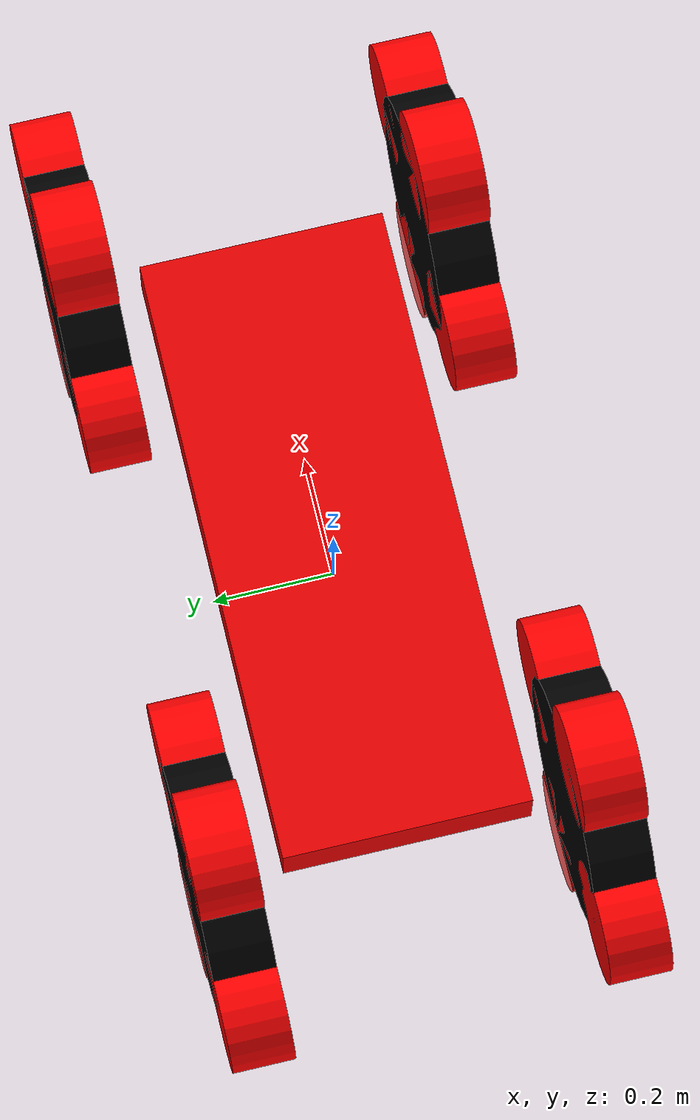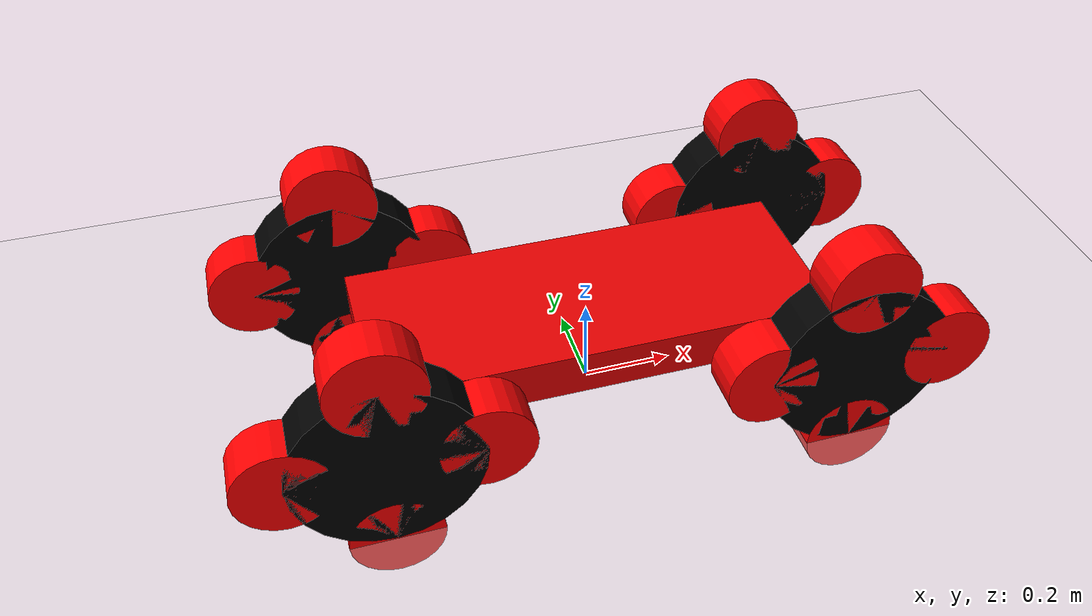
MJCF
<mujoco><option gravity="0 0 -9.81" /><worldbody><light diffuse=".5 .5 .5" pos="0 0 3" dir="0 0 -1" /><geom type="plane" size="5 5 0.1" rgba=".9 .9 .9 1" /><body name="chassis" pos="0 0 0.2" euler="0 90 0"><joint type="free" /><geom type="box" size=".05 .2 .5" rgba="0.9 0 0 1" /><body name="leftf-tire" pos="0 0.3 -0.5" euler="90 0 0"><joint name="leftf-wheel" type="hinge" axis="0 0 -1" /><geom type="cylinder" size=".2 0.05" rgba="0 0 0 1" /><body pos="0 0.2 0" euler="0 0 0"><geom type="cylinder" size=".1 0.05" rgba="1 0 0 1" /></body><body pos="0 -0.2 0" euler="0 0 0"><geom type="cylinder" size=".1 0.05" rgba="1 0 0 1" /></body><body pos="0.2 0 0" euler="0 0 0"><geom type="cylinder" size=".1 0.05" rgba="1 0 0 1" /></body><body pos="-0.2 0 0" euler="0 0 0"><geom type="cylinder" size=".1 0.05" rgba="1 0 0 1" /></body></body><body name="leftb-tire" pos="0 0.3 0.5" euler="90 0 0"><joint name="leftb-wheel" type="hinge" axis="0 0 -1" /><geom type="cylinder" size=".2 0.05" rgba="0 0 0 1" /><body pos="0 0.2 0" euler="0 0 0"><geom type="cylinder" size=".1 0.05" rgba="1 0 0 1" /></body><body pos="0 -0.2 0" euler="0 0 0"><geom type="cylinder" size=".1 0.05" rgba="1 0 0 1" /></body><body pos="0.2 0 0" euler="0 0 0"><geom type="cylinder" size=".1 0.05" rgba="1 0 0 1" /></body><body pos="-0.2 0 0" euler="0 0 0"><geom type="cylinder" size=".1 0.05" rgba="1 0 0 1" /></body></body><body name="rightf-tire" pos="0 -0.3 -0.5" euler="90 0 0"><joint name="rightf-wheel" type="hinge" axis="0 0 -1" /><geom type="cylinder" size=".2 0.05" rgba="0 0 0 1" /><body pos="0 0.2 0" euler="0 0 0"><geom type="cylinder" size=".1 0.05" rgba="1 0 0 1" /></body><body pos="0 -0.2 0" euler="0 0 0"><geom type="cylinder" size=".1 0.05" rgba="1 0 0 1" /></body><body pos="0.2 0 0" euler="0 0 0"><geom type="cylinder" size=".1 0.05" rgba="1 0 0 1" /></body><body pos="-0.2 0 0" euler="0 0 0"><geom type="cylinder" size=".1 0.05" rgba="1 0 0 1" /></body></body><body name="rightb-tire" pos="0 -0.3 0.5" euler="90 0 0"><joint name="rightb-wheel" type="hinge" axis="0 0 -1" /><geom type="cylinder" size=".2 0.05" rgba="0 0 0 1" /><body pos="0 0.2 0" euler="0 0 0"><geom type="cylinder" size=".1 0.05" rgba="1 0 0 1" /></body><body pos="0 -0.2 0" euler="0 0 0"><geom type="cylinder" size=".1 0.05" rgba="1 0 0 1" /></body><body pos="0.2 0 0" euler="0 0 0"><geom type="cylinder" size=".1 0.05" rgba="1 0 0 1" /></body><body pos="-0.2 0 0" euler="0 0 0"><geom type="cylinder" size=".1 0.05" rgba="1 0 0 1" /></body></body></body></worldbody><actuator><velocity name="leftf-velocity-servo" joint="leftf-wheel" kv="100" /><velocity name="leftb-velocity-servo" joint="leftb-wheel" kv="100" /><velocity name="rightf-velocity-servo" joint="rightf-wheel" kv="100" /><velocity name="rightb-velocity-servo" joint="rightb-wheel" kv="100" /></actuator></mujoco>
